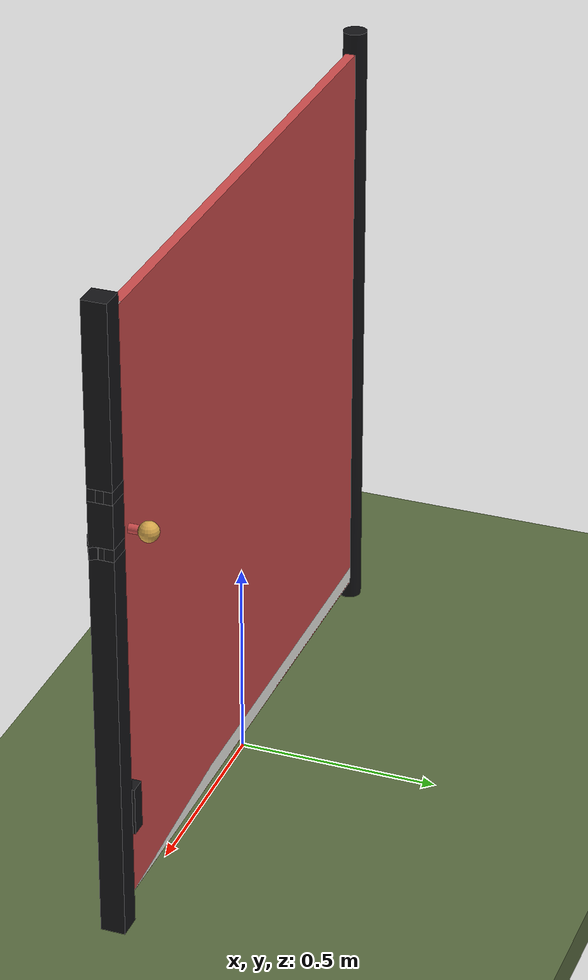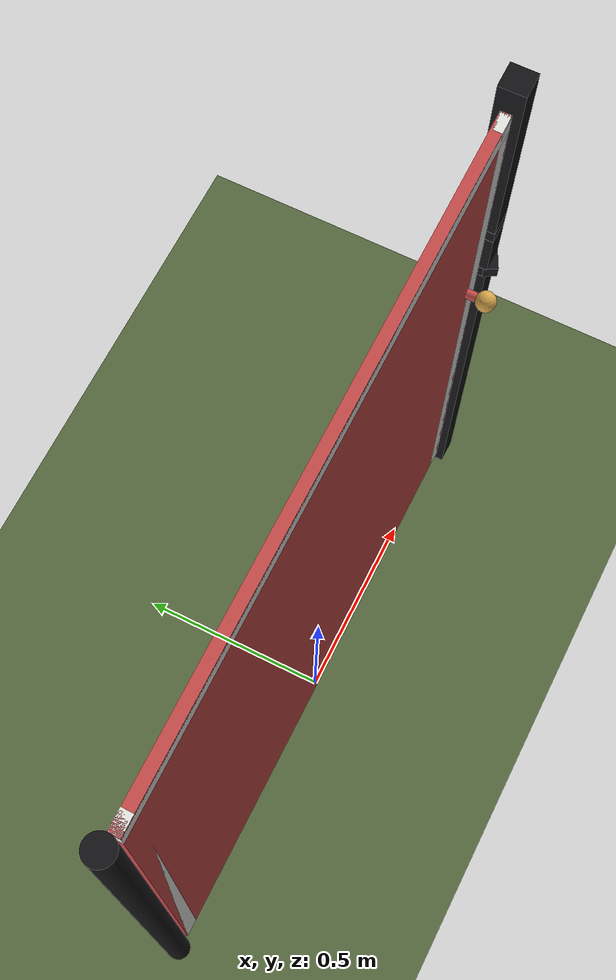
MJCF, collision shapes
<?xml version="1.0" ?>
<mujoco model="db0931_gate_swing_minimal">
  <compiler angle="radian" meshdir="../../hardware" texturedir="../../textures" autolimits="true" inertiafromgeom="false"/>
  <option timestep="0.002" integrator="implicitfast" cone="elliptic" impratio="10" noslip_iterations="3">
    <flag multiccd="enable"/>
  </option>
  <size memory="16M"/>
  <default>
    <geom condim="4" solref="0.005 1" solimp="0.95 0.99 0.001"/>
    <joint solreflimit="0.005 1" solimplimit="0.95 0.99 0.001"/>
    <tendon solreflimit="0.005 1"/>
    <equality solref="0.002 1"/>
  </default>
  <visual>
    <headlight ambient="0.4 0.4 0.4" diffuse="0.7 0.7 0.7" specular="0.2 0.2 0.2"/>
    <quality shadowsize="4096"/>
    <map znear="0.01" zfar="60"/>
  </visual>
  <asset>
    <mesh name="knob_d1888f6f03" file="knob_d1888f6f03.obj"/>
    <material name="mat_floor" rgba="0.35 0.42 0.25 1" specular="0.2" shininess="0.15" reflectance="0"/>
    <material name="mat_wall" rgba="0.78 0.76 0.7 1" specular="0.2" shininess="0.1" reflectance="0"/>
    <material name="mat_leaf" rgba="0.93 0.93 0.91 1" specular="0.23" shininess="0.3" reflectance="0.02"/>
    <material name="mat_hinge" rgba="0.65 0.66 0.68 1" specular="0.74" shininess="0.5" reflectance="0.36"/>
    <material name="mat_op_brass" rgba="0.85 0.66 0.3 1" specular="0.8" shininess="0.75" reflectance="0.4"/>
    <material name="mat_trim" rgba="0.85 0.66 0.3 1" specular="0.8" shininess="0.75" reflectance="0.4"/>
    <material name="mat_bolt" rgba="0.75 0.76 0.77 1" specular="0.8" shininess="0.65" reflectance="0.4"/>
    <material name="mat_deadbolt" rgba="0.85 0.66 0.3 1" specular="0.8" shininess="0.75" reflectance="0.4"/>
    <material name="mat_frame" rgba="0.08 0.08 0.09 1" specular="0.56" shininess="0.25" reflectance="0.24"/>
    <texture name="skybox" type="skybox" builtin="gradient" rgb1="0.6 0.7 0.85" rgb2="0.9 0.92 0.95" width="256" height="256"/>
  </asset>
  <worldbody>
    <light name="sun" pos="1.5 -2.5 4" dir="-0.3 0.5 -0.8" directional="true" diffuse="0.8 0.8 0.8" specular="0.3 0.3 0.3" castshadow="true"/>
    <light name="fill" pos="-1.5 2.5 3" dir="0.3 -0.5 -0.7" directional="true" diffuse="0.35 0.35 0.4" castshadow="false"/>
    <camera name="robot_view" pos="0 -2.05 1.334" xyaxes="1 0 0 0 0.26963 0.962964" fovy="52"/>
    <camera name="far_view" pos="0 2.05 1.334" xyaxes="-1 0 0 0 -0.26963 0.962964" fovy="52"/>
    <camera name="iso" pos="1.558 -1.722 1.662" xyaxes="0.741536 0.670913 0 -0.242917 0.268487 0.932151" fovy="46"/>
    <camera name="detail_handle" pos="0.872 -0.859 1.28" xyaxes="0.97561 0.219512 0 -0.070934 0.315262 0.94635" fovy="38"/>
    <geom name="floor" type="box" size="6 6 0.05" pos="0 0 -0.05" material="mat_floor" group="0" contype="1" conaffinity="1" friction="0.8 0.005 0.0001" density="2400"/>
    <geom name="post_hinge" type="cylinder" size="0.03 0.8" pos="-0.786 0 0.8" material="mat_frame" group="0" contype="1" conaffinity="1" friction="0.6 0.005 0.0001" density="800"/>
    <geom name="post_1000_wall_n" type="box" size="0.03 0.01175 0.015" pos="0.786 0.01825 1" material="mat_frame" group="0" contype="1" conaffinity="1" friction="0.6 0.005 0.0001" density="800"/>
    <geom name="post_1000_wall_p" type="box" size="0.03 0.008 0.015" pos="0.786 -0.0145 1" material="mat_frame" group="0" contype="1" conaffinity="1" friction="0.6 0.005 0.0001" density="800"/>
    <geom name="post_1000_ramp" type="box" size="0.03 0.016771 0.015" pos="0.790333 -0.024084 1" quat="0.973249 0 0 0.229753" material="mat_frame" group="0" contype="1" conaffinity="1" friction="0.12 0.005 0.0001" density="800"/>
    <geom name="post_1000_back" type="box" size="0.021 0.0065 0.015" pos="0.795 0 1" material="mat_frame" group="0" contype="1" conaffinity="1" friction="0.6 0.005 0.0001" density="800"/>
    <geom name="post_1140_wall_n" type="box" size="0.03 0.01025 0.0155" pos="0.786 0.01975 1.14" material="mat_frame" group="0" contype="1" conaffinity="1" friction="0.6 0.005 0.0001" density="800"/>
    <geom name="post_1140_wall_p" type="box" size="0.03 0.01025 0.0155" pos="0.786 -0.01975 1.14" material="mat_frame" group="0" contype="1" conaffinity="1" friction="0.6 0.005 0.0001" density="800"/>
    <geom name="post_1140_back" type="box" size="0.0153 0.0095 0.0155" pos="0.8007 0 1.14" material="mat_frame" group="0" contype="1" conaffinity="1" friction="0.6 0.005 0.0001" density="800"/>
    <geom name="post_latch_0" type="box" size="0.03 0.03 0.4925" pos="0.786 0 0.4925" material="mat_frame" group="0" contype="1" conaffinity="1" friction="0.6 0.005 0.0001" density="800"/>
    <geom name="post_latch_1" type="box" size="0.03 0.03 0.05475" pos="0.786 0 1.06975" material="mat_frame" group="0" contype="1" conaffinity="1" friction="0.6 0.005 0.0001" density="800"/>
    <geom name="post_latch_2" type="box" size="0.03 0.03 0.22225" pos="0.786 0 1.37775" material="mat_frame" group="0" contype="1" conaffinity="1" friction="0.6 0.005 0.0001" density="800"/>
    <geom name="gate_stop" type="box" size="0.02 0.012 0.06" pos="0.736 0.0245 0.3" material="mat_frame" group="0" contype="1" conaffinity="1" friction="0.6 0.005 0.0001" density="800"/>
    <site name="approach_point" pos="0 -1.5 0" quat="1 0 0 0" size="0.05" rgba="0.2 0.9 0.2 0.5" group="4"/>
    <site name="goal_point" pos="0 1.5 0" quat="1 0 0 0" size="0.05" rgba="0.2 0.9 0.2 0.5" group="4"/>
    <site name="door_plane_center" pos="0 0 0.76" quat="1 0 0 0" size="0.02" rgba="0.2 0.9 0.2 0.5" group="4"/>
    <body name="leaf" pos="-0.756 0 0">
      <inertial pos="0.753 0 0.8" mass="67.174408" quat="0 0 0.707107 0.707107" diaginertia="12.599926146 12.599926146 25.192854959"/>
      <joint name="leaf_hinge" type="hinge" axis="0 0 -1" pos="0.003 -0.05 0" limited="true" range="0 1.745329" damping="1.421431" frictionloss="13.901214" armature="0.02"/>
      <geom name="leaf_slab_col" type="box" size="0.75 0.0125 0.75" pos="0.753 0 0.8" material="mat_leaf" group="3" contype="1" conaffinity="1" rgba="0.8 0.3 0.3 0.25" friction="0.45 0.005 0.0001" density="1"/>
      <geom name="leaf_rail_b" type="box" size="0.75 0.0125 0.0225" pos="0.753 0 0.0725" material="mat_leaf" group="1" contype="0" conaffinity="0" density="1"/>
      <geom name="leaf_rail_t" type="box" size="0.75 0.0125 0.0225" pos="0.753 0 1.5275" material="mat_leaf" group="1" contype="0" conaffinity="0" density="1"/>
      <geom name="leaf_stile_h" type="box" size="0.0225 0.0125 0.75" pos="0.0255 0 0.8" material="mat_leaf" group="1" contype="0" conaffinity="0" density="1"/>
      <geom name="leaf_stile_l" type="box" size="0.0225 0.0125 0.75" pos="1.4805 0 0.8" material="mat_leaf" group="1" contype="0" conaffinity="0" density="1"/>
      <site name="leaf_edge_mid" pos="1.503 0 0.75" quat="1 0 0 0" size="0.02" rgba="0.2 0.9 0.2 0.5" group="4"/>
      <body name="leaf_handle" pos="1.448 0 1">
        <inertial pos="0 0 0" mass="1.098683" quat="0.5 -0.5 0.5 -0.5" diaginertia="0.000311555 0.003134844 0.003134844"/>
        <joint name="leaf_handle_hinge" type="hinge" axis="0 -1 0" limited="true" range="0 0.87" damping="0.143612" frictionloss="0.038" stiffness="0.5" springref="-0.5" armature="0.01"/>
        <geom name="leaf_handle_knob_n" type="mesh" mesh="knob_d1888f6f03" pos="0 -0.0125 0" quat="0.707107 0.707107 0 0" material="mat_op_brass" group="1" contype="0" conaffinity="0" density="3000"/>
        <geom name="leaf_handle_knob_col_n" type="sphere" size="0.0243" pos="0 -0.059 0" material="mat_op_brass" group="0" contype="1" conaffinity="1" friction="0.9 0.01 0.0001" density="3000"/>
        <geom name="leaf_handle_knob_neck_n" type="cylinder" size="0.011 0.012" pos="0 -0.0245 0" quat="0.707107 -0.707107 0 0" material="mat_op_brass" group="3" contype="1" conaffinity="1" rgba="0.8 0.3 0.3 0.25" friction="0.6 0.005 0.0001" density="3000"/>
        <geom name="leaf_handle_knob_p" type="mesh" mesh="knob_d1888f6f03" pos="0 0.0125 0" quat="-0.707107 0.707107 0 0" material="mat_op_brass" group="1" contype="0" conaffinity="0" density="3000"/>
        <geom name="leaf_handle_knob_col_p" type="sphere" size="0.0243" pos="0 0.059 0" material="mat_op_brass" group="0" contype="1" conaffinity="1" friction="0.9 0.01 0.0001" density="3000"/>
        <geom name="leaf_handle_knob_neck_p" type="cylinder" size="0.011 0.012" pos="0 0.0245 0" quat="0.707107 -0.707107 0 0" material="mat_op_brass" group="3" contype="1" conaffinity="1" rgba="0.8 0.3 0.3 0.25" friction="0.6 0.005 0.0001" density="3000"/>
        <site name="leaf_handle_grip_n" pos="0 -0.059 0" quat="1 0 0 0" size="0.012" rgba="0.2 0.9 0.2 0.5" group="4"/>
        <site name="leaf_handle_grip_p" pos="0 0.059 0" quat="1 0 0 0" size="0.012" rgba="0.2 0.9 0.2 0.5" group="4"/>
      </body>
      <body name="leaf_latch_bolt" pos="1.503 0 1">
        <inertial pos="-0.008 0 0" mass="0.027149" quat="0 0 0.707107 0.707107" diaginertia="0.000000328 0.000003943 0.000003943"/>
        <joint name="leaf_latch_bolt_slide" type="slide" axis="-1 0 0" limited="true" range="0 0.014" damping="2" frictionloss="0.3" stiffness="400" springref="-0.01" armature="0.1"/>
        <geom name="leaf_latch_bolt_capsule" type="capsule" size="0.005 0.017" pos="-0.008 0 0" quat="0.707107 0 0.707107 0" material="mat_bolt" group="0" contype="1" conaffinity="1" friction="0.2 0.005 0.0001" density="8500"/>
      </body>
    </body>
  </worldbody>
  <tendon>
    <fixed name="leaf_latch_bolt_coupling" limited="true" range="0 10">
      <joint joint="leaf_latch_bolt_slide" coef="1"/>
      <joint joint="leaf_handle_hinge" coef="-0.017284"/>
    </fixed>
  </tendon>
  <sensor>
    <jointpos name="leaf_hinge_pos" joint="leaf_hinge"/>
    <jointvel name="leaf_hinge_vel" joint="leaf_hinge"/>
    <jointpos name="leaf_handle_hinge_pos" joint="leaf_handle_hinge"/>
    <jointvel name="leaf_handle_hinge_vel" joint="leaf_handle_hinge"/>
    <jointpos name="leaf_latch_bolt_slide_pos" joint="leaf_latch_bolt_slide"/>
    <jointvel name="leaf_latch_bolt_slide_vel" joint="leaf_latch_bolt_slide"/>
  </sensor>
</mujoco>
